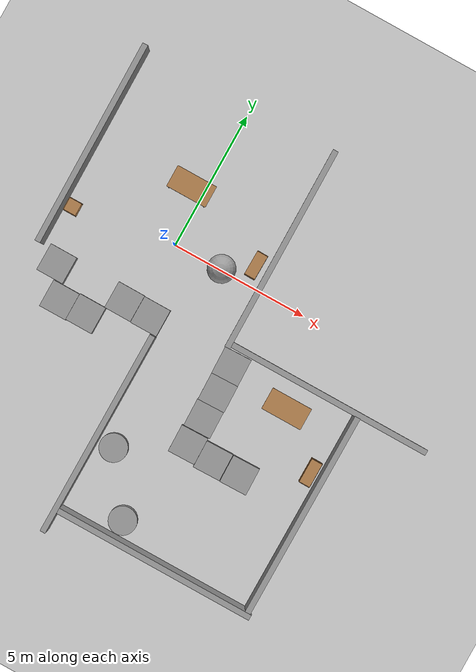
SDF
<sdf version="1.4">
 <world name="default">
  <model name="ground_plane">
   <static>1</static>
   <link name="link">
    <collision name="collision">
     <geometry><plane><normal>0 0 1</normal><size>100 100</size></plane></geometry>
     <surface><friction><ode><mu>100</mu><mu2>50</mu2></ode></friction></surface>
    </collision>
    <visual name="visual">
     <cast_shadows>0</cast_shadows>
     <geometry><plane><normal>0 0 1</normal><size>100 100</size></plane></geometry>
     <material>
      <script><uri>file://media/materials/scripts/gazebo.material</uri><name>Gazebo/Grey</name></script>
     </material>
    </visual>
    <velocity_decay><linear>0</linear><angular>0</angular></velocity_decay>
   </link>
  </model>
  <model name="cabinet_0">
   <static>1</static>
   <link name="cabinet_bottom_plate">
    <inertial>
     <pose>0 0 -1 0 -0 0</pose>
     <inertia><ixx>2.05</ixx><ixy>0</ixy><ixz>0</ixz><iyy>2.05</iyy><iyz>0</iyz><izz>2.05</izz></inertia>
     <mass>25</mass>
    </inertial>
    <collision name="cabinet_bottom_plate_geom">
     <pose>0 0 0.01 0 -0 0</pose>
     <geometry><box><size>0.45 0.45 0.02</size></box></geometry>
    </collision>
    <visual name="cabinet_bottom_plate_geom_visual">
     <pose>0 0 0.01 0 -0 0</pose>
     <geometry><box><size>0.45 0.45 0.02</size></box></geometry>
     <material>
      <script><uri>file://media/materials/scripts/gazebo.material</uri><name>Gazebo/Wood</name></script>
     </material>
    </visual>
    <collision name="cabinet_bottom_plate_geom_cabinet_back_plate">
     <pose>0.235 0 0.51 0 -0 0</pose>
     <geometry><box><size>0.02 0.45 1.02</size></box></geometry>
    </collision>
    <visual name="cabinet_bottom_plate_geom_cabinet_back_plate_visual">
     <pose>0.235 0 0.51 0 -0 0</pose>
     <geometry><box><size>0.02 0.45 1.02</size></box></geometry>
     <material>
      <script><uri>file://media/materials/scripts/gazebo.material</uri><name>Gazebo/Wood</name></script>
     </material>
    </visual>
    <collision name="cabinet_bottom_plate_geom_cabinet_left_plate">
     <pose>0 0.235 0.51 0 -0 0</pose>
     <geometry><box><size>0.45 0.02 1.02</size></box></geometry>
    </collision>
    <visual name="cabinet_bottom_plate_geom_cabinet_left_plate_visual">
     <pose>0 0.235 0.51 0 -0 0</pose>
     <geometry><box><size>0.45 0.02 1.02</size></box></geometry>
     <material>
      <script><uri>file://media/materials/scripts/gazebo.material</uri><name>Gazebo/Wood</name></script>
     </material>
    </visual>
    <collision name="cabinet_bottom_plate_geom_cabinet_middle_plate">
     <pose>0 0 0.51 0 -0 0</pose>
     <geometry><box><size>0.45 0.45 0.02</size></box></geometry>
    </collision>
    <visual name="cabinet_bottom_plate_geom_cabinet_middle_plate_visual">
     <pose>0 0 0.51 0 -0 0</pose>
     <geometry><box><size>0.45 0.45 0.02</size></box></geometry>
     <material>
      <script><uri>file://media/materials/scripts/gazebo.material</uri><name>Gazebo/Wood</name></script>
     </material>
    </visual>
    <collision name="cabinet_bottom_plate_geom_cabinet_right_plate">
     <pose>0 -0.235 0.51 0 -0 0</pose>
     <geometry><box><size>0.45 0.02 1.02</size></box></geometry>
    </collision>
    <visual name="cabinet_bottom_plate_geom_cabinet_right_plate_visual">
     <pose>0 -0.235 0.51 0 -0 0</pose>
     <geometry><box><size>0.45 0.02 1.02</size></box></geometry>
     <material>
      <script><uri>file://media/materials/scripts/gazebo.material</uri><name>Gazebo/Wood</name></script>
     </material>
    </visual>
    <collision name="cabinet_bottom_plate_geom_cabinet_top_plate">
     <pose>0 0 1.01 0 -0 0</pose>
     <geometry><box><size>0.45 0.45 0.02</size></box></geometry>
    </collision>
    <visual name="cabinet_bottom_plate_geom_cabinet_top_plate_visual">
     <pose>0 0 1.01 0 -0 0</pose>
     <geometry><box><size>0.45 0.45 0.02</size></box></geometry>
     <material>
      <script><uri>file://media/materials/scripts/gazebo.material</uri><name>Gazebo/Wood</name></script>
     </material>
    </visual>
    <velocity_decay><linear>0</linear><angular>0</angular></velocity_decay>
   </link>
   <pose>-3.64296 -0.553538 0 0 0 -3.13794</pose>
  </model>
  <model name="grey_wall_0">
   <static>1</static>
   <link name="link">
    <pose>0 0 1.4 0 -0 0</pose>
    <collision name="collision"><geometry><box><size>7.5 0.2 2.8</size></box></geometry></collision>
    <visual name="visual">
     <cast_shadows>0</cast_shadows>
     <geometry><box><size>7.5 0.2 2.8</size></box></geometry>
     <material>
      <script>
       <uri>model://grey_wall/materials/scripts</uri>
       <uri>model://grey_wall/materials/textures</uri>
       <name>vrc/grey_wall</name>
      </script>
     </material>
    </visual>
    <velocity_decay><linear>0</linear><angular>0</angular></velocity_decay>
   </link>
   <pose>-4.04453 1.59528 0 0 0 -1.56355</pose>
  </model>
  <model name="bookshelf_7">
   <static>1</static>
   <link name="link">
    <inertial><mass>1</mass></inertial>
    <collision name="back">
     <pose>0 0.005 0.6 0 -0 0</pose>
     <geometry><box><size>0.9 0.01 1.2</size></box></geometry>
    </collision>
    <visual name="visual1">
     <pose>0 0.005 0.6 0 -0 0</pose>
     <geometry><box><size>0.9 0.01 1.2</size></box></geometry>
     <material>
      <script><uri>file://media/materials/scripts/gazebo.material</uri><name>Gazebo/Wood</name></script>
     </material>
    </visual>
    <collision name="left_side">
     <pose>0.45 -0.195 0.6 0 -0 0</pose>
     <geometry><box><size>0.02 0.4 1.2</size></box></geometry>
    </collision>
    <visual name="visual2">
     <pose>0.45 -0.195 0.6 0 -0 0</pose>
     <geometry><box><size>0.02 0.4 1.2</size></box></geometry>
     <material>
      <script><uri>file://media/materials/scripts/gazebo.material</uri><name>Gazebo/Wood</name></script>
     </material>
    </visual>
    <collision name="right_side">
     <pose>-0.45 -0.195 0.6 0 -0 0</pose>
     <geometry><box><size>0.02 0.4 1.2</size></box></geometry>
    </collision>
    <visual name="visual3">
     <pose>-0.45 -0.195 0.6 0 -0 0</pose>
     <geometry><box><size>0.02 0.4 1.2</size></box></geometry>
     <material>
      <script><uri>file://media/materials/scripts/gazebo.material</uri><name>Gazebo/Wood</name></script>
     </material>
    </visual>
    <collision name="bottom">
     <pose>0 -0.195 0.03 0 -0 0</pose>
     <geometry><box><size>0.88 0.4 0.06</size></box></geometry>
    </collision>
    <visual name="visual4">
     <pose>0 -0.195 0.03 0 -0 0</pose>
     <geometry><box><size>0.88 0.4 0.06</size></box></geometry>
     <material>
      <script><uri>file://media/materials/scripts/gazebo.material</uri><name>Gazebo/Wood</name></script>
     </material>
    </visual>
    <collision name="top">
     <pose>0 -0.195 1.19 0 -0 0</pose>
     <geometry><box><size>0.88 0.4 0.02</size></box></geometry>
    </collision>
    <visual name="visual5">
     <pose>0 -0.195 1.19 0 -0 0</pose>
     <geometry><box><size>0.88 0.4 0.02</size></box></geometry>
     <material>
      <script><uri>file://media/materials/scripts/gazebo.material</uri><name>Gazebo/Wood</name></script>
     </material>
    </visual>
    <collision name="low_shelf">
     <pose>0 -0.195 0.43 0 -0 0</pose>
     <geometry><box><size>0.88 0.4 0.02</size></box></geometry>
    </collision>
    <visual name="visual6">
     <pose>0 -0.195 0.43 0 -0 0</pose>
     <geometry><box><size>0.88 0.4 0.02</size></box></geometry>
     <material>
      <script><uri>file://media/materials/scripts/gazebo.material</uri><name>Gazebo/Wood</name></script>
     </material>
    </visual>
    <collision name="high_shelf">
     <pose>0 -0.195 0.8 0 -0 0</pose>
     <geometry><box><size>0.88 0.4 0.02</size></box></geometry>
    </collision>
    <visual name="visual7">
     <pose>0 -0.195 0.8 0 -0 0</pose>
     <geometry><box><size>0.88 0.4 0.02</size></box></geometry>
     <material>
      <script><uri>file://media/materials/scripts/gazebo.material</uri><name>Gazebo/Wood</name></script>
     </material>
    </visual>
    <velocity_decay><linear>0</linear><angular>0</angular></velocity_decay>
   </link>
   <pose>2.93225 0.729611 0 0 0 -1.58676</pose>
  </model>
  <model name="unit_box_2">
   <pose>-3.17242 -2.49874 0.5 0 -0 -0.002942</pose>
   <link name="link">
    <inertial>
     <mass>1</mass>
     <inertia><ixx>1</ixx><ixy>0</ixy><ixz>0</ixz><iyy>1</iyy><iyz>0</iyz><izz>1</izz></inertia>
    </inertial>
    <collision name="collision"><geometry><box><size>1 1 1</size></box></geometry></collision>
    <visual name="visual">
     <geometry><box><size>1 1 1</size></box></geometry>
     <material>
      <script><uri>file://media/materials/scripts/gazebo.material</uri><name>Gazebo/Grey</name></script>
     </material>
    </visual>
    <velocity_decay><linear>0</linear><angular>0</angular></velocity_decay>
   </link>
   <static>0</static>
  </model>
  <model name="unit_box_3">
   <pose>-2.4972 -3.52165 0.5 0 -0 3.7e-05</pose>
   <link name="link">
    <inertial>
     <mass>1</mass>
     <inertia><ixx>1</ixx><ixy>0</ixy><ixz>0</ixz><iyy>1</iyy><iyz>0</iyz><izz>1</izz></inertia>
    </inertial>
    <collision name="collision"><geometry><box><size>1 1 1</size></box></geometry></collision>
    <visual name="visual">
     <geometry><box><size>1 1 1</size></box></geometry>
     <material>
      <script><uri>file://media/materials/scripts/gazebo.material</uri><name>Gazebo/Grey</name></script>
     </material>
    </visual>
    <velocity_decay><linear>0</linear><angular>0</angular></velocity_decay>
   </link>
   <static>0</static>
  </model>
  <model name="unit_box_4">
   <pose>-1.49594 -3.49881 0.5 0 -0 -0.00247</pose>
   <link name="link">
    <inertial>
     <mass>1</mass>
     <inertia><ixx>1</ixx><ixy>0</ixy><ixz>0</ixz><iyy>1</iyy><iyz>0</iyz><izz>1</izz></inertia>
    </inertial>
    <collision name="collision"><geometry><box><size>1 1 1</size></box></geometry></collision>
    <visual name="visual">
     <geometry><box><size>1 1 1</size></box></geometry>
     <material>
      <script><uri>file://media/materials/scripts/gazebo.material</uri><name>Gazebo/Grey</name></script>
     </material>
    </visual>
    <velocity_decay><linear>0</linear><angular>0</angular></velocity_decay>
   </link>
   <static>0</static>
  </model>
  <model name="grey_wall_2">
   <static>1</static>
   <link name="link">
    <pose>0 0 1.4 0 -0 0</pose>
    <collision name="collision"><geometry><box><size>7.5 0.2 2.8</size></box></geometry></collision>
    <visual name="visual">
     <cast_shadows>0</cast_shadows>
     <geometry><box><size>7.5 0.2 2.8</size></box></geometry>
     <material>
      <script>
       <uri>model://grey_wall/materials/scripts</uri>
       <uri>model://grey_wall/materials/textures</uri>
       <name>vrc/grey_wall</name>
      </script>
     </material>
    </visual>
    <velocity_decay><linear>0</linear><angular>0</angular></velocity_decay>
   </link>
   <pose>3.22275 1.58238 0 0 0 -1.56598</pose>
  </model>
  <model name="unit_sphere_1">
   <pose>1.77019 0.065282 0.5 0 -0 0</pose>
   <link name="link">
    <inertial>
     <mass>1</mass>
     <inertia><ixx>1</ixx><ixy>0</ixy><ixz>0</ixz><iyy>1</iyy><iyz>0</iyz><izz>1</izz></inertia>
    </inertial>
    <collision name="collision"><geometry><sphere><radius>0.5</radius></sphere></geometry></collision>
    <visual name="visual">
     <geometry><sphere><radius>0.5</radius></sphere></geometry>
     <material>
      <script><uri>file://media/materials/scripts/gazebo.material</uri><name>Gazebo/Grey</name></script>
     </material>
    </visual>
    <velocity_decay><linear>0</linear><angular>0</angular></velocity_decay>
   </link>
   <static>0</static>
  </model>
  <model name="table">
   <static>1</static>
   <link name="link">
    <collision name="surface">
     <pose>0 0 1 0 -0 0</pose>
     <geometry><box><size>1.5 0.8 0.03</size></box></geometry>
     <surface><friction><ode><mu>0.6</mu><mu2>0.6</mu2></ode></friction></surface>
    </collision>
    <visual name="visual1">
     <pose>0 0 1 0 -0 0</pose>
     <geometry><box><size>1.5 0.8 0.03</size></box></geometry>
     <material>
      <script><uri>file://media/materials/scripts/gazebo.material</uri><name>Gazebo/Wood</name></script>
     </material>
    </visual>
    <collision name="front_left_leg">
     <pose>0.68 0.38 0.5 0 -0 0</pose>
     <geometry><cylinder><radius>0.02</radius><length>1</length></cylinder></geometry>
    </collision>
    <visual name="front_left_leg">
     <pose>0.68 0.38 0.5 0 -0 0</pose>
     <geometry><cylinder><radius>0.02</radius><length>1</length></cylinder></geometry>
     <material>
      <script><uri>file://media/materials/scripts/gazebo.material</uri><name>Gazebo/Grey</name></script>
     </material>
    </visual>
    <collision name="front_right_leg">
     <pose>0.68 -0.38 0.5 0 -0 0</pose>
     <geometry><cylinder><radius>0.02</radius><length>1</length></cylinder></geometry>
    </collision>
    <visual name="front_right_leg">
     <pose>0.68 -0.38 0.5 0 -0 0</pose>
     <geometry><cylinder><radius>0.02</radius><length>1</length></cylinder></geometry>
     <material>
      <script><uri>file://media/materials/scripts/gazebo.material</uri><name>Gazebo/Grey</name></script>
     </material>
    </visual>
    <collision name="back_right_leg">
     <pose>-0.68 -0.38 0.5 0 -0 0</pose>
     <geometry><cylinder><radius>0.02</radius><length>1</length></cylinder></geometry>
    </collision>
    <visual name="back_right_leg">
     <pose>-0.68 -0.38 0.5 0 -0 0</pose>
     <geometry><cylinder><radius>0.02</radius><length>1</length></cylinder></geometry>
     <material>
      <script><uri>file://media/materials/scripts/gazebo.material</uri><name>Gazebo/Grey</name></script>
     </material>
    </visual>
    <collision name="back_left_leg">
     <pose>-0.68 0.38 0.5 0 -0 0</pose>
     <geometry><cylinder><radius>0.02</radius><length>1</length></cylinder></geometry>
    </collision>
    <visual name="back_left_leg">
     <pose>-0.68 0.38 0.5 0 -0 0</pose>
     <geometry><cylinder><radius>0.02</radius><length>1</length></cylinder></geometry>
     <material>
      <script><uri>file://media/materials/scripts/gazebo.material</uri><name>Gazebo/Grey</name></script>
     </material>
    </visual>
    <velocity_decay><linear>0</linear><angular>0</angular></velocity_decay>
   </link>
   <pose>-0.462473 2 0 0 -0 0</pose>
  </model>
  <model name="unit_box_6">
   <pose>3.7058 -3.65946 0.5 0 -0 0.022013</pose>
   <link name="link">
    <inertial>
     <mass>1</mass>
     <inertia><ixx>1</ixx><ixy>0</ixy><ixz>0</ixz><iyy>1</iyy><iyz>0</iyz><izz>1</izz></inertia>
    </inertial>
    <collision name="collision"><geometry><box><size>1 1 1</size></box></geometry></collision>
    <visual name="visual">
     <geometry><box><size>1 1 1</size></box></geometry>
     <material>
      <script><uri>file://media/materials/scripts/gazebo.material</uri><name>Gazebo/Grey</name></script>
     </material>
    </visual>
    <velocity_decay><linear>0</linear><angular>0</angular></velocity_decay>
   </link>
   <static>0</static>
  </model>
  <model name="unit_box_7">
   <pose>3.67696 -2.65981 0.5 0 -0 0.022093</pose>
   <link name="link">
    <inertial>
     <mass>1</mass>
     <inertia><ixx>1</ixx><ixy>0</ixy><ixz>0</ixz><iyy>1</iyy><iyz>0</iyz><izz>1</izz></inertia>
    </inertial>
    <collision name="collision"><geometry><box><size>1 1 1</size></box></geometry></collision>
    <visual name="visual">
     <geometry><box><size>1 1 1</size></box></geometry>
     <material>
      <script><uri>file://media/materials/scripts/gazebo.material</uri><name>Gazebo/Grey</name></script>
     </material>
    </visual>
    <velocity_decay><linear>0</linear><angular>0</angular></velocity_decay>
   </link>
   <static>0</static>
  </model>
  <model name="unit_box_8">
   <pose>0.460324 -2.51668 0.5 0 -0 0</pose>
   <link name="link">
    <inertial>
     <mass>1</mass>
     <inertia><ixx>1</ixx><ixy>0</ixy><ixz>0</ixz><iyy>1</iyy><iyz>0</iyz><izz>1</izz></inertia>
    </inertial>
    <collision name="collision"><geometry><box><size>1 1 1</size></box></geometry></collision>
    <visual name="visual">
     <geometry><box><size>1 1 1</size></box></geometry>
     <material>
      <script><uri>file://media/materials/scripts/gazebo.material</uri><name>Gazebo/Grey</name></script>
     </material>
    </visual>
    <velocity_decay><linear>0</linear><angular>0</angular></velocity_decay>
   </link>
   <static>0</static>
  </model>
  <model name="unit_box_9">
   <pose>-0.54563 -2.50173 0.5 0 0 -0.003779</pose>
   <link name="link">
    <inertial>
     <mass>1</mass>
     <inertia><ixx>1</ixx><ixy>0</ixy><ixz>0</ixz><iyy>1</iyy><iyz>0</iyz><izz>1</izz></inertia>
    </inertial>
    <collision name="collision"><geometry><box><size>1 1 1</size></box></geometry></collision>
    <visual name="visual">
     <geometry><box><size>1 1 1</size></box></geometry>
     <material>
      <script><uri>file://media/materials/scripts/gazebo.material</uri><name>Gazebo/Grey</name></script>
     </material>
    </visual>
    <velocity_decay><linear>0</linear><angular>0</angular></velocity_decay>
   </link>
   <static>0</static>
  </model>
  <model name="grey_wall_1">
   <static>1</static>
   <link name="link">
    <pose>0 0 1.4 0 -0 0</pose>
    <collision name="collision"><geometry><box><size>7.5 0.2 2.8</size></box></geometry></collision>
    <visual name="visual">
     <cast_shadows>0</cast_shadows>
     <geometry><box><size>7.5 0.2 2.8</size></box></geometry>
     <material>
      <script>
       <uri>model://grey_wall/materials/scripts</uri>
       <uri>model://grey_wall/materials/textures</uri>
       <name>vrc/grey_wall</name>
      </script>
     </material>
    </visual>
    <velocity_decay><linear>0</linear><angular>0</angular></velocity_decay>
   </link>
   <pose>0.861209 -6.78217 0 0 -0 1.56828</pose>
  </model>
  <model name="grey_wall_3">
   <static>1</static>
   <link name="link">
    <pose>0 0 1.4 0 -0 0</pose>
    <collision name="collision"><geometry><box><size>7.5 0.2 2.8</size></box></geometry></collision>
    <visual name="visual">
     <cast_shadows>0</cast_shadows>
     <geometry><box><size>7.5 0.2 2.8</size></box></geometry>
     <material>
      <script>
       <uri>model://grey_wall/materials/scripts</uri>
       <uri>model://grey_wall/materials/textures</uri>
       <name>vrc/grey_wall</name>
      </script>
     </material>
    </visual>
    <velocity_decay><linear>0</linear><angular>0</angular></velocity_decay>
   </link>
   <pose>4.53881 -9.66136 0 0 -0 0</pose>
  </model>
  <model name="grey_wall_4">
   <static>1</static>
   <link name="link">
    <pose>0 0 1.4 0 -0 0</pose>
    <collision name="collision"><geometry><box><size>7.5 0.2 2.8</size></box></geometry></collision>
    <visual name="visual">
     <cast_shadows>0</cast_shadows>
     <geometry><box><size>7.5 0.2 2.8</size></box></geometry>
     <material>
      <script>
       <uri>model://grey_wall/materials/scripts</uri>
       <uri>model://grey_wall/materials/textures</uri>
       <name>vrc/grey_wall</name>
      </script>
     </material>
    </visual>
    <velocity_decay><linear>0</linear><angular>0</angular></velocity_decay>
   </link>
   <pose>8.15884 -5.83499 0 0 -0 1.56587</pose>
  </model>
  <model name="grey_wall_5">
   <static>1</static>
   <link name="link">
    <pose>0 0 1.4 0 -0 0</pose>
    <collision name="collision"><geometry><box><size>7.5 0.2 2.8</size></box></geometry></collision>
    <visual name="visual">
     <cast_shadows>0</cast_shadows>
     <geometry><box><size>7.5 0.2 2.8</size></box></geometry>
     <material>
      <script>
       <uri>model://grey_wall/materials/scripts</uri>
       <uri>model://grey_wall/materials/textures</uri>
       <name>vrc/grey_wall</name>
      </script>
     </material>
    </visual>
    <velocity_decay><linear>0</linear><angular>0</angular></velocity_decay>
   </link>
   <pose>7 -2 0 0 -0 0</pose>
  </model>
  <model name="unit_box_1">
   <pose>3.71335 -4.65972 0.5 0 -0 0.021639</pose>
   <link name="link">
    <inertial>
     <mass>1</mass>
     <inertia><ixx>1</ixx><ixy>0</ixy><ixz>0</ixz><iyy>1</iyy><iyz>0</iyz><izz>1</izz></inertia>
    </inertial>
    <collision name="collision"><geometry><box><size>1 1 1</size></box></geometry></collision>
    <visual name="visual">
     <geometry><box><size>1 1 1</size></box></geometry>
     <material>
      <script><uri>file://media/materials/scripts/gazebo.material</uri><name>Gazebo/Grey</name></script>
     </material>
    </visual>
    <velocity_decay><linear>0</linear><angular>0</angular></velocity_decay>
   </link>
   <static>0</static>
  </model>
  <model name="unit_box_2_0">
   <pose>3.68179 -5.68022 0.5 0 -0 0.017428</pose>
   <link name="link">
    <inertial>
     <mass>1</mass>
     <inertia><ixx>1</ixx><ixy>0</ixy><ixz>0</ixz><iyy>1</iyy><iyz>0</iyz><izz>1</izz></inertia>
    </inertial>
    <collision name="collision"><geometry><box><size>1 1 1</size></box></geometry></collision>
    <visual name="visual">
     <geometry><box><size>1 1 1</size></box></geometry>
     <material>
      <script><uri>file://media/materials/scripts/gazebo.material</uri><name>Gazebo/Grey</name></script>
     </material>
    </visual>
    <velocity_decay><linear>0</linear><angular>0</angular></velocity_decay>
   </link>
   <static>0</static>
  </model>
  <model name="unit_box_3_0">
   <pose>4.68452 -5.74181 0.5 0 -0 0.017512</pose>
   <link name="link">
    <inertial>
     <mass>1</mass>
     <inertia><ixx>1</ixx><ixy>0</ixy><ixz>0</ixz><iyy>1</iyy><iyz>0</iyz><izz>1</izz></inertia>
    </inertial>
    <collision name="collision"><geometry><box><size>1 1 1</size></box></geometry></collision>
    <visual name="visual">
     <geometry><box><size>1 1 1</size></box></geometry>
     <material>
      <script><uri>file://media/materials/scripts/gazebo.material</uri><name>Gazebo/Grey</name></script>
     </material>
    </visual>
    <velocity_decay><linear>0</linear><angular>0</angular></velocity_decay>
   </link>
   <static>0</static>
  </model>
  <model name="unit_box_4_0">
   <pose>5.70708 -5.73487 0.5 0 -0 0.017516</pose>
   <link name="link">
    <inertial>
     <mass>1</mass>
     <inertia><ixx>1</ixx><ixy>0</ixy><ixz>0</ixz><iyy>1</iyy><iyz>0</iyz><izz>1</izz></inertia>
    </inertial>
    <collision name="collision"><geometry><box><size>1 1 1</size></box></geometry></collision>
    <visual name="visual">
     <geometry><box><size>1 1 1</size></box></geometry>
     <material>
      <script><uri>file://media/materials/scripts/gazebo.material</uri><name>Gazebo/Grey</name></script>
     </material>
    </visual>
    <velocity_decay><linear>0</linear><angular>0</angular></velocity_decay>
   </link>
   <static>0</static>
  </model>
  <model name="unit_cylinder_1">
   <pose>1.52816 -7 0.499992 -1e-06 -0 0</pose>
   <link name="link">
    <inertial>
     <mass>1</mass>
     <inertia><ixx>1</ixx><ixy>0</ixy><ixz>0</ixz><iyy>1</iyy><iyz>0</iyz><izz>1</izz></inertia>
    </inertial>
    <collision name="collision">
     <geometry><cylinder><radius>0.5</radius><length>1</length></cylinder></geometry>
    </collision>
    <visual name="visual">
     <geometry><cylinder><radius>0.5</radius><length>1</length></cylinder></geometry>
     <material>
      <script><uri>file://media/materials/scripts/gazebo.material</uri><name>Gazebo/Grey</name></script>
     </material>
    </visual>
    <velocity_decay><linear>0</linear><angular>0</angular></velocity_decay>
   </link>
   <static>0</static>
  </model>
  <model name="table_0">
   <static>1</static>
   <link name="link">
    <collision name="surface">
     <pose>0 0 1 0 -0 0</pose>
     <geometry><box><size>1.5 0.8 0.03</size></box></geometry>
     <surface><friction><ode><mu>0.6</mu><mu2>0.6</mu2></ode></friction></surface>
    </collision>
    <visual name="visual1">
     <pose>0 0 1 0 -0 0</pose>
     <geometry><box><size>1.5 0.8 0.03</size></box></geometry>
     <material>
      <script><uri>file://media/materials/scripts/gazebo.material</uri><name>Gazebo/Wood</name></script>
     </material>
    </visual>
    <collision name="front_left_leg">
     <pose>0.68 0.38 0.5 0 -0 0</pose>
     <geometry><cylinder><radius>0.02</radius><length>1</length></cylinder></geometry>
    </collision>
    <visual name="front_left_leg">
     <pose>0.68 0.38 0.5 0 -0 0</pose>
     <geometry><cylinder><radius>0.02</radius><length>1</length></cylinder></geometry>
     <material>
      <script><uri>file://media/materials/scripts/gazebo.material</uri><name>Gazebo/Grey</name></script>
     </material>
    </visual>
    <collision name="front_right_leg">
     <pose>0.68 -0.38 0.5 0 -0 0</pose>
     <geometry><cylinder><radius>0.02</radius><length>1</length></cylinder></geometry>
    </collision>
    <visual name="front_right_leg">
     <pose>0.68 -0.38 0.5 0 -0 0</pose>
     <geometry><cylinder><radius>0.02</radius><length>1</length></cylinder></geometry>
     <material>
      <script><uri>file://media/materials/scripts/gazebo.material</uri><name>Gazebo/Grey</name></script>
     </material>
    </visual>
    <collision name="back_right_leg">
     <pose>-0.68 -0.38 0.5 0 -0 0</pose>
     <geometry><cylinder><radius>0.02</radius><length>1</length></cylinder></geometry>
    </collision>
    <visual name="back_right_leg">
     <pose>-0.68 -0.38 0.5 0 -0 0</pose>
     <geometry><cylinder><radius>0.02</radius><length>1</length></cylinder></geometry>
     <material>
      <script><uri>file://media/materials/scripts/gazebo.material</uri><name>Gazebo/Grey</name></script>
     </material>
    </visual>
    <collision name="back_left_leg">
     <pose>-0.68 0.38 0.5 0 -0 0</pose>
     <geometry><cylinder><radius>0.02</radius><length>1</length></cylinder></geometry>
    </collision>
    <visual name="back_left_leg">
     <pose>-0.68 0.38 0.5 0 -0 0</pose>
     <geometry><cylinder><radius>0.02</radius><length>1</length></cylinder></geometry>
     <material>
      <script><uri>file://media/materials/scripts/gazebo.material</uri><name>Gazebo/Grey</name></script>
     </material>
    </visual>
    <velocity_decay><linear>0</linear><angular>0</angular></velocity_decay>
   </link>
   <pose>6 -3 0 0 -0 0</pose>
  </model>
  <model name="unit_cylinder_2">
   <pose>3 -9 0.499998 1e-06 -0 0</pose>
   <link name="link">
    <inertial>
     <mass>1</mass>
     <inertia><ixx>1</ixx><ixy>0</ixy><ixz>0</ixz><iyy>1</iyy><iyz>0</iyz><izz>1</izz></inertia>
    </inertial>
    <collision name="collision">
     <geometry><cylinder><radius>0.5</radius><length>1</length></cylinder></geometry>
    </collision>
    <visual name="visual">
     <geometry><cylinder><radius>0.5</radius><length>1</length></cylinder></geometry>
     <material>
      <script><uri>file://media/materials/scripts/gazebo.material</uri><name>Gazebo/Grey</name></script>
     </material>
    </visual>
    <velocity_decay><linear>0</linear><angular>0</angular></velocity_decay>
   </link>
   <static>0</static>
  </model>
  <model name="bookshelf">
   <static>1</static>
   <link name="link">
    <inertial><mass>1</mass></inertial>
    <collision name="back">
     <pose>0 0.005 0.6 0 -0 0</pose>
     <geometry><box><size>0.9 0.01 1.2</size></box></geometry>
    </collision>
    <visual name="visual1">
     <pose>0 0.005 0.6 0 -0 0</pose>
     <geometry><box><size>0.9 0.01 1.2</size></box></geometry>
     <material>
      <script><uri>file://media/materials/scripts/gazebo.material</uri><name>Gazebo/Wood</name></script>
     </material>
    </visual>
    <collision name="left_side">
     <pose>0.45 -0.195 0.6 0 -0 0</pose>
     <geometry><box><size>0.02 0.4 1.2</size></box></geometry>
    </collision>
    <visual name="visual2">
     <pose>0.45 -0.195 0.6 0 -0 0</pose>
     <geometry><box><size>0.02 0.4 1.2</size></box></geometry>
     <material>
      <script><uri>file://media/materials/scripts/gazebo.material</uri><name>Gazebo/Wood</name></script>
     </material>
    </visual>
    <collision name="right_side">
     <pose>-0.45 -0.195 0.6 0 -0 0</pose>
     <geometry><box><size>0.02 0.4 1.2</size></box></geometry>
    </collision>
    <visual name="visual3">
     <pose>-0.45 -0.195 0.6 0 -0 0</pose>
     <geometry><box><size>0.02 0.4 1.2</size></box></geometry>
     <material>
      <script><uri>file://media/materials/scripts/gazebo.material</uri><name>Gazebo/Wood</name></script>
     </material>
    </visual>
    <collision name="bottom">
     <pose>0 -0.195 0.03 0 -0 0</pose>
     <geometry><box><size>0.88 0.4 0.06</size></box></geometry>
    </collision>
    <visual name="visual4">
     <pose>0 -0.195 0.03 0 -0 0</pose>
     <geometry><box><size>0.88 0.4 0.06</size></box></geometry>
     <material>
      <script><uri>file://media/materials/scripts/gazebo.material</uri><name>Gazebo/Wood</name></script>
     </material>
    </visual>
    <collision name="top">
     <pose>0 -0.195 1.19 0 -0 0</pose>
     <geometry><box><size>0.88 0.4 0.02</size></box></geometry>
    </collision>
    <visual name="visual5">
     <pose>0 -0.195 1.19 0 -0 0</pose>
     <geometry><box><size>0.88 0.4 0.02</size></box></geometry>
     <material>
      <script><uri>file://media/materials/scripts/gazebo.material</uri><name>Gazebo/Wood</name></script>
     </material>
    </visual>
    <collision name="low_shelf">
     <pose>0 -0.195 0.43 0 -0 0</pose>
     <geometry><box><size>0.88 0.4 0.02</size></box></geometry>
    </collision>
    <visual name="visual6">
     <pose>0 -0.195 0.43 0 -0 0</pose>
     <geometry><box><size>0.88 0.4 0.02</size></box></geometry>
     <material>
      <script><uri>file://media/materials/scripts/gazebo.material</uri><name>Gazebo/Wood</name></script>
     </material>
    </visual>
    <collision name="high_shelf">
     <pose>0 -0.195 0.8 0 -0 0</pose>
     <geometry><box><size>0.88 0.4 0.02</size></box></geometry>
    </collision>
    <visual name="visual7">
     <pose>0 -0.195 0.8 0 -0 0</pose>
     <geometry><box><size>0.88 0.4 0.02</size></box></geometry>
     <material>
      <script><uri>file://media/materials/scripts/gazebo.material</uri><name>Gazebo/Wood</name></script>
     </material>
    </visual>
    <velocity_decay><linear>0</linear><angular>0</angular></velocity_decay>
   </link>
   <pose>7.95896 -4.49496 0 0 0 -1.57554</pose>
  </model>
 </world>
</sdf>
